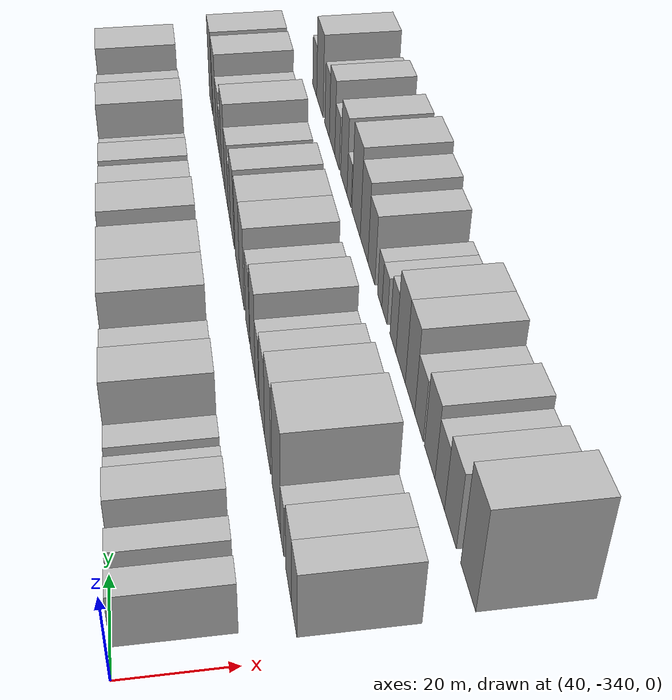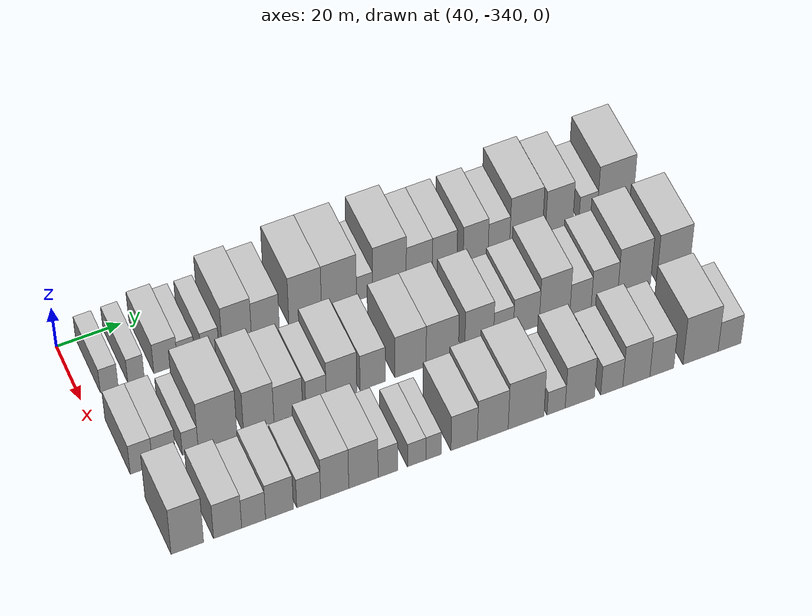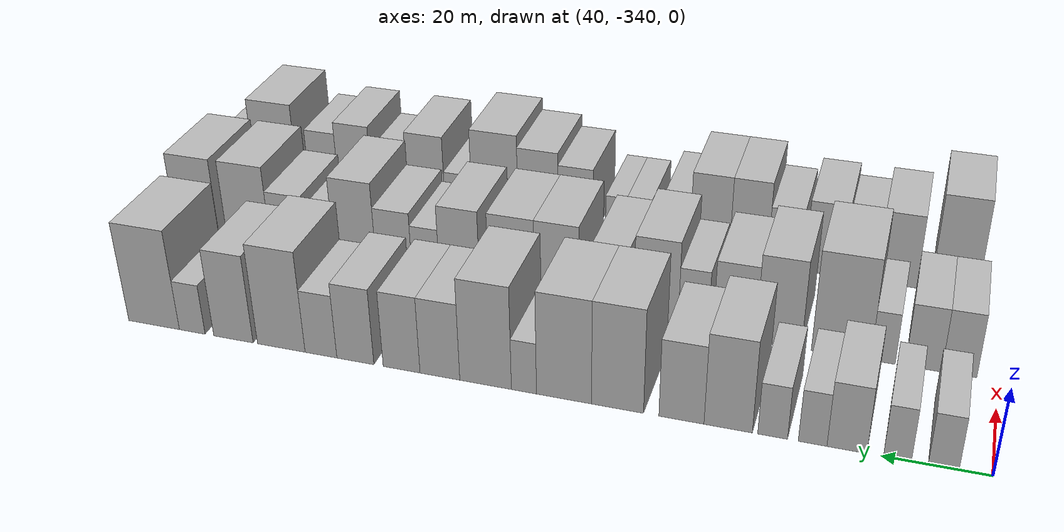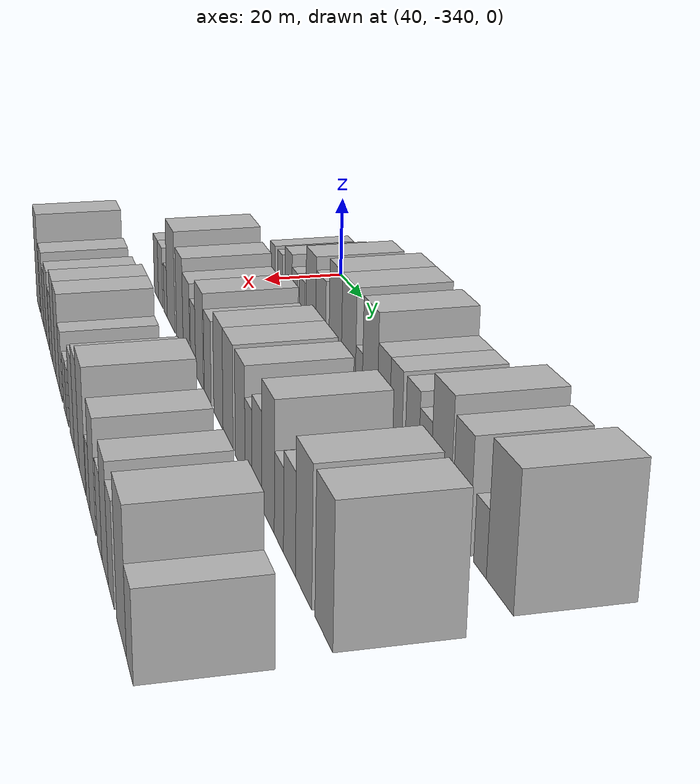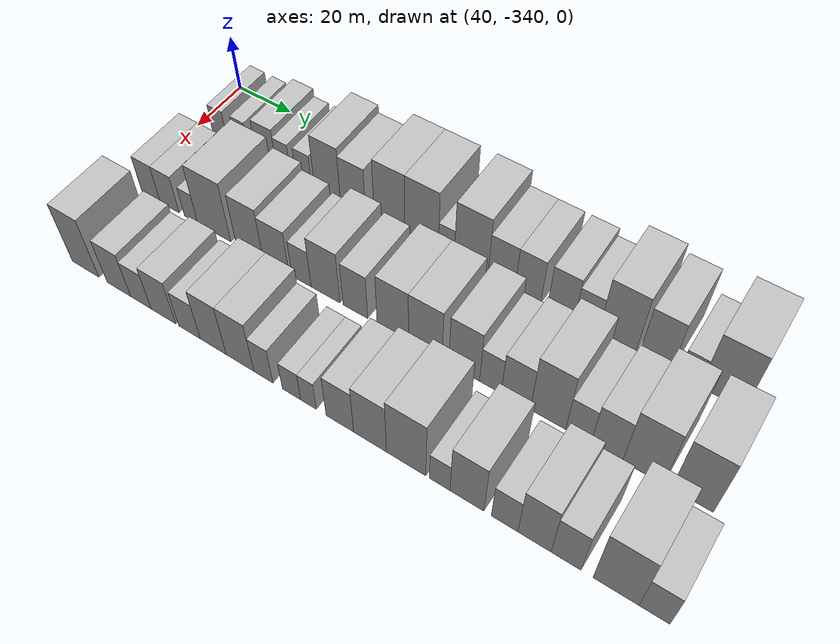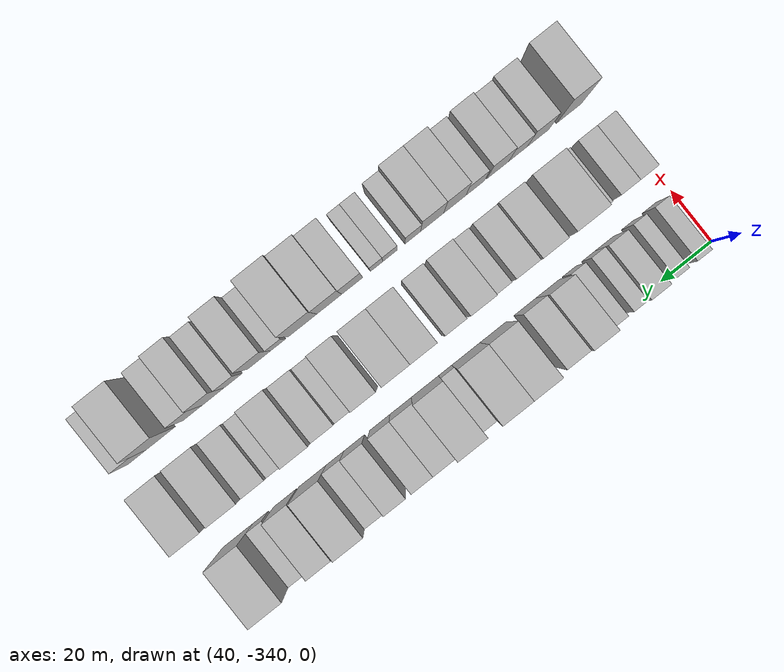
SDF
<sdf version="1.6">
 <world name="default">
  <model name="building_1">
   <static>1</static>
   <pose>50.0000 -331.2544 0 0.000000 0.000000 0.000000</pose>
   <link name="link">
    <pose>0 0 6.00 0 0 0</pose>
    <collision name="collision"><geometry><box><size>20.0000 5.4912 12.0000</size></box></geometry></collision>
    <visual name="visual">
     <cast_shadows>0</cast_shadows>
     <geometry><box><size>20.0000 5.4912 12.0000</size></box></geometry>
     <material>
      <script>
       <uri>model://HANNAS_wall/materials/scripts</uri>
       <uri>model://HANNAS_wall/materials/textures</uri>
       <name>vrc/HANNAS_wall</name>
      </script>
     </material>
    </visual>
   </link>
  </model>
  <model name="building_2">
   <static>1</static>
   <pose>50.0000 -322.9805 0 0.000000 0.000000 0.000000</pose>
   <link name="link">
    <pose>0 0 6.00 0 0 0</pose>
    <collision name="collision"><geometry><box><size>20.0000 5.0566 12.0000</size></box></geometry></collision>
    <visual name="visual">
     <cast_shadows>0</cast_shadows>
     <geometry><box><size>20.0000 5.0566 12.0000</size></box></geometry>
     <material>
      <script>
       <uri>model://HANNAS_wall/materials/scripts</uri>
       <uri>model://HANNAS_wall/materials/textures</uri>
       <name>vrc/HANNAS_wall</name>
      </script>
     </material>
    </visual>
   </link>
  </model>
  <model name="building_3">
   <static>1</static>
   <pose>50.0000 -313.7861 0 0.000000 0.000000 0.000000</pose>
   <link name="link">
    <pose>0 0 7.50 0 0 0</pose>
    <collision name="collision"><geometry><box><size>20.0000 7.3321 15.0000</size></box></geometry></collision>
    <visual name="visual">
     <cast_shadows>0</cast_shadows>
     <geometry><box><size>20.0000 7.3321 15.0000</size></box></geometry>
     <material>
      <script>
       <uri>model://HANNAS_wall/materials/scripts</uri>
       <uri>model://HANNAS_wall/materials/textures</uri>
       <name>vrc/HANNAS_wall</name>
      </script>
     </material>
    </visual>
   </link>
  </model>
  <model name="building_4">
   <static>1</static>
   <pose>50.0000 -307.4647 0 0.000000 0.000000 0.000000</pose>
   <link name="link">
    <pose>0 0 6.00 0 0 0</pose>
    <collision name="collision"><geometry><box><size>20.0000 5.3108 12.0000</size></box></geometry></collision>
    <visual name="visual">
     <cast_shadows>0</cast_shadows>
     <geometry><box><size>20.0000 5.3108 12.0000</size></box></geometry>
     <material>
      <script>
       <uri>model://HANNAS_wall/materials/scripts</uri>
       <uri>model://HANNAS_wall/materials/textures</uri>
       <name>vrc/HANNAS_wall</name>
      </script>
     </material>
    </visual>
   </link>
  </model>
  <model name="building_5">
   <static>1</static>
   <pose>50.0000 -300.0003 0 0.000000 0.000000 0.000000</pose>
   <link name="link">
    <pose>0 0 6.00 0 0 0</pose>
    <collision name="collision"><geometry><box><size>20.0000 5.6180 12.0000</size></box></geometry></collision>
    <visual name="visual">
     <cast_shadows>0</cast_shadows>
     <geometry><box><size>20.0000 5.6180 12.0000</size></box></geometry>
     <material>
      <script>
       <uri>model://HANNAS_wall/materials/scripts</uri>
       <uri>model://HANNAS_wall/materials/textures</uri>
       <name>vrc/HANNAS_wall</name>
      </script>
     </material>
    </visual>
   </link>
  </model>
  <model name="building_6">
   <static>1</static>
   <pose>50.0000 -291.5749 0 0.000000 0.000000 0.000000</pose>
   <link name="link">
    <pose>0 0 10.50 0 0 0</pose>
    <collision name="collision"><geometry><box><size>20.0000 9.2328 21.0000</size></box></geometry></collision>
    <visual name="visual">
     <cast_shadows>0</cast_shadows>
     <geometry><box><size>20.0000 9.2328 21.0000</size></box></geometry>
     <material>
      <script>
       <uri>model://HANNAS_wall/materials/scripts</uri>
       <uri>model://HANNAS_wall/materials/textures</uri>
       <name>vrc/HANNAS_wall</name>
      </script>
     </material>
    </visual>
   </link>
  </model>
  <model name="building_7">
   <static>1</static>
   <pose>50.0000 -282.5871 0 0.000000 0.000000 0.000000</pose>
   <link name="link">
    <pose>0 0 9.00 0 0 0</pose>
    <collision name="collision"><geometry><box><size>20.0000 8.7428 18.0000</size></box></geometry></collision>
    <visual name="visual">
     <cast_shadows>0</cast_shadows>
     <geometry><box><size>20.0000 8.7428 18.0000</size></box></geometry>
     <material>
      <script>
       <uri>model://HANNAS_wall/materials/scripts</uri>
       <uri>model://HANNAS_wall/materials/textures</uri>
       <name>vrc/HANNAS_wall</name>
      </script>
     </material>
    </visual>
   </link>
  </model>
  <model name="building_8">
   <static>1</static>
   <pose>50.0000 -270.0461 0 0.000000 0.000000 0.000000</pose>
   <link name="link">
    <pose>0 0 12.00 0 0 0</pose>
    <collision name="collision"><geometry><box><size>20.0000 10.3390 24.0000</size></box></geometry></collision>
    <visual name="visual">
     <cast_shadows>0</cast_shadows>
     <geometry><box><size>20.0000 10.3390 24.0000</size></box></geometry>
     <material>
      <script>
       <uri>model://HANNAS_wall/materials/scripts</uri>
       <uri>model://HANNAS_wall/materials/textures</uri>
       <name>vrc/HANNAS_wall</name>
      </script>
     </material>
    </visual>
   </link>
  </model>
  <model name="building_9">
   <static>1</static>
   <pose>50.0000 -259.3363 0 0.000000 0.000000 0.000000</pose>
   <link name="link">
    <pose>0 0 12.00 0 0 0</pose>
    <collision name="collision"><geometry><box><size>20.0000 11.0808 24.0000</size></box></geometry></collision>
    <visual name="visual">
     <cast_shadows>0</cast_shadows>
     <geometry><box><size>20.0000 11.0808 24.0000</size></box></geometry>
     <material>
      <script>
       <uri>model://HANNAS_wall/materials/scripts</uri>
       <uri>model://HANNAS_wall/materials/textures</uri>
       <name>vrc/HANNAS_wall</name>
      </script>
     </material>
    </visual>
   </link>
  </model>
  <model name="building_10">
   <static>1</static>
   <pose>50.0000 -251.2310 0 0.000000 0.000000 0.000000</pose>
   <link name="link">
    <pose>0 0 6.00 0 0 0</pose>
    <collision name="collision"><geometry><box><size>20.0000 5.1298 12.0000</size></box></geometry></collision>
    <visual name="visual">
     <cast_shadows>0</cast_shadows>
     <geometry><box><size>20.0000 5.1298 12.0000</size></box></geometry>
     <material>
      <script>
       <uri>model://HANNAS_wall/materials/scripts</uri>
       <uri>model://HANNAS_wall/materials/textures</uri>
       <name>vrc/HANNAS_wall</name>
      </script>
     </material>
    </visual>
   </link>
  </model>
  <model name="building_11">
   <static>1</static>
   <pose>50.0000 -243.3117 0 0.000000 0.000000 0.000000</pose>
   <link name="link">
    <pose>0 0 12.00 0 0 0</pose>
    <collision name="collision"><geometry><box><size>20.0000 10.7088 24.0000</size></box></geometry></collision>
    <visual name="visual">
     <cast_shadows>0</cast_shadows>
     <geometry><box><size>20.0000 10.7088 24.0000</size></box></geometry>
     <material>
      <script>
       <uri>model://HANNAS_wall/materials/scripts</uri>
       <uri>model://HANNAS_wall/materials/textures</uri>
       <name>vrc/HANNAS_wall</name>
      </script>
     </material>
    </visual>
   </link>
  </model>
  <model name="building_12">
   <static>1</static>
   <pose>50.0000 -233.7596 0 0.000000 0.000000 0.000000</pose>
   <link name="link">
    <pose>0 0 9.00 0 0 0</pose>
    <collision name="collision"><geometry><box><size>20.0000 8.3953 18.0000</size></box></geometry></collision>
    <visual name="visual">
     <cast_shadows>0</cast_shadows>
     <geometry><box><size>20.0000 8.3953 18.0000</size></box></geometry>
     <material>
      <script>
       <uri>model://HANNAS_wall/materials/scripts</uri>
       <uri>model://HANNAS_wall/materials/textures</uri>
       <name>vrc/HANNAS_wall</name>
      </script>
     </material>
    </visual>
   </link>
  </model>
  <model name="building_13">
   <static>1</static>
   <pose>50.0000 -225.6236 0 0.000000 0.000000 0.000000</pose>
   <link name="link">
    <pose>0 0 9.00 0 0 0</pose>
    <collision name="collision"><geometry><box><size>20.0000 7.8767 18.0000</size></box></geometry></collision>
    <visual name="visual">
     <cast_shadows>0</cast_shadows>
     <geometry><box><size>20.0000 7.8767 18.0000</size></box></geometry>
     <material>
      <script>
       <uri>model://HANNAS_wall/materials/scripts</uri>
       <uri>model://HANNAS_wall/materials/textures</uri>
       <name>vrc/HANNAS_wall</name>
      </script>
     </material>
    </visual>
   </link>
  </model>
  <model name="building_14">
   <static>1</static>
   <pose>50.0000 -215.6583 0 0.000000 0.000000 0.000000</pose>
   <link name="link">
    <pose>0 0 9.00 0 0 0</pose>
    <collision name="collision"><geometry><box><size>20.0000 8.0539 18.0000</size></box></geometry></collision>
    <visual name="visual">
     <cast_shadows>0</cast_shadows>
     <geometry><box><size>20.0000 8.0539 18.0000</size></box></geometry>
     <material>
      <script>
       <uri>model://HANNAS_wall/materials/scripts</uri>
       <uri>model://HANNAS_wall/materials/textures</uri>
       <name>vrc/HANNAS_wall</name>
      </script>
     </material>
    </visual>
   </link>
  </model>
  <model name="building_15">
   <static>1</static>
   <pose>50.0000 -208.1335 0 0.000000 0.000000 0.000000</pose>
   <link name="link">
    <pose>0 0 7.50 0 0 0</pose>
    <collision name="collision"><geometry><box><size>20.0000 6.9958 15.0000</size></box></geometry></collision>
    <visual name="visual">
     <cast_shadows>0</cast_shadows>
     <geometry><box><size>20.0000 6.9958 15.0000</size></box></geometry>
     <material>
      <script>
       <uri>model://HANNAS_wall/materials/scripts</uri>
       <uri>model://HANNAS_wall/materials/textures</uri>
       <name>vrc/HANNAS_wall</name>
      </script>
     </material>
    </visual>
   </link>
  </model>
  <model name="building_16">
   <static>1</static>
   <pose>50.0000 -199.3201 0 0.000000 0.000000 0.000000</pose>
   <link name="link">
    <pose>0 0 12.00 0 0 0</pose>
    <collision name="collision"><geometry><box><size>20.0000 10.6309 24.0000</size></box></geometry></collision>
    <visual name="visual">
     <cast_shadows>0</cast_shadows>
     <geometry><box><size>20.0000 10.6309 24.0000</size></box></geometry>
     <material>
      <script>
       <uri>model://HANNAS_wall/materials/scripts</uri>
       <uri>model://HANNAS_wall/materials/textures</uri>
       <name>vrc/HANNAS_wall</name>
      </script>
     </material>
    </visual>
   </link>
  </model>
  <model name="building_17">
   <static>1</static>
   <pose>50.0000 -188.5351 0 0.000000 0.000000 0.000000</pose>
   <link name="link">
    <pose>0 0 10.50 0 0 0</pose>
    <collision name="collision"><geometry><box><size>20.0000 8.9390 21.0000</size></box></geometry></collision>
    <visual name="visual">
     <cast_shadows>0</cast_shadows>
     <geometry><box><size>20.0000 8.9390 21.0000</size></box></geometry>
     <material>
      <script>
       <uri>model://HANNAS_wall/materials/scripts</uri>
       <uri>model://HANNAS_wall/materials/textures</uri>
       <name>vrc/HANNAS_wall</name>
      </script>
     </material>
    </visual>
   </link>
  </model>
  <model name="building_18">
   <static>1</static>
   <pose>50.0000 -179.0991 0 0.000000 0.000000 0.000000</pose>
   <link name="link">
    <pose>0 0 6.00 0 0 0</pose>
    <collision name="collision"><geometry><box><size>20.0000 5.9330 12.0000</size></box></geometry></collision>
    <visual name="visual">
     <cast_shadows>0</cast_shadows>
     <geometry><box><size>20.0000 5.9330 12.0000</size></box></geometry>
     <material>
      <script>
       <uri>model://HANNAS_wall/materials/scripts</uri>
       <uri>model://HANNAS_wall/materials/textures</uri>
       <name>vrc/HANNAS_wall</name>
      </script>
     </material>
    </visual>
   </link>
  </model>
  <model name="building_19">
   <static>1</static>
   <pose>50.0000 -170.2115 0 0.000000 0.000000 0.000000</pose>
   <link name="link">
    <pose>0 0 12.00 0 0 0</pose>
    <collision name="collision"><geometry><box><size>20.0000 11.8422 24.0000</size></box></geometry></collision>
    <visual name="visual">
     <cast_shadows>0</cast_shadows>
     <geometry><box><size>20.0000 11.8422 24.0000</size></box></geometry>
     <material>
      <script>
       <uri>model://HANNAS_wall/materials/scripts</uri>
       <uri>model://HANNAS_wall/materials/textures</uri>
       <name>vrc/HANNAS_wall</name>
      </script>
     </material>
    </visual>
   </link>
  </model>
  <model name="building_78">
   <static>1</static>
   <pose>79.0000 -332.5974 0 0.000000 0.000000 0.000000</pose>
   <link name="link">
    <pose>0 0 7.50 0 0 0</pose>
    <collision name="collision"><geometry><box><size>20.0000 6.8053 15.0000</size></box></geometry></collision>
    <visual name="visual">
     <cast_shadows>0</cast_shadows>
     <geometry><box><size>20.0000 6.8053 15.0000</size></box></geometry>
     <material>
      <script>
       <uri>model://HANNAS_wall/materials/scripts</uri>
       <uri>model://HANNAS_wall/materials/textures</uri>
       <name>vrc/HANNAS_wall</name>
      </script>
     </material>
    </visual>
   </link>
  </model>
  <model name="building_79">
   <static>1</static>
   <pose>79.0000 -325.6412 0 0.000000 0.000000 0.000000</pose>
   <link name="link">
    <pose>0 0 7.50 0 0 0</pose>
    <collision name="collision"><geometry><box><size>20.0000 7.1070 15.0000</size></box></geometry></collision>
    <visual name="visual">
     <cast_shadows>0</cast_shadows>
     <geometry><box><size>20.0000 7.1070 15.0000</size></box></geometry>
     <material>
      <script>
       <uri>model://HANNAS_wall/materials/scripts</uri>
       <uri>model://HANNAS_wall/materials/textures</uri>
       <name>vrc/HANNAS_wall</name>
      </script>
     </material>
    </visual>
   </link>
  </model>
  <model name="building_80">
   <static>1</static>
   <pose>79.0000 -317.6626 0 0.000000 0.000000 0.000000</pose>
   <link name="link">
    <pose>0 0 6.00 0 0 0</pose>
    <collision name="collision"><geometry><box><size>20.0000 4.8501 12.0000</size></box></geometry></collision>
    <visual name="visual">
     <cast_shadows>0</cast_shadows>
     <geometry><box><size>20.0000 4.8501 12.0000</size></box></geometry>
     <material>
      <script>
       <uri>model://HANNAS_wall/materials/scripts</uri>
       <uri>model://HANNAS_wall/materials/textures</uri>
       <name>vrc/HANNAS_wall</name>
      </script>
     </material>
    </visual>
   </link>
  </model>
  <model name="building_81">
   <static>1</static>
   <pose>79.0000 -309.2641 0 0.000000 0.000000 0.000000</pose>
   <link name="link">
    <pose>0 0 12.00 0 0 0</pose>
    <collision name="collision"><geometry><box><size>20.0000 11.9469 24.0000</size></box></geometry></collision>
    <visual name="visual">
     <cast_shadows>0</cast_shadows>
     <geometry><box><size>20.0000 11.9469 24.0000</size></box></geometry>
     <material>
      <script>
       <uri>model://HANNAS_wall/materials/scripts</uri>
       <uri>model://HANNAS_wall/materials/textures</uri>
       <name>vrc/HANNAS_wall</name>
      </script>
     </material>
    </visual>
   </link>
  </model>
  <model name="building_82">
   <static>1</static>
   <pose>79.0000 -296.5862 0 0.000000 0.000000 0.000000</pose>
   <link name="link">
    <pose>0 0 10.50 0 0 0</pose>
    <collision name="collision"><geometry><box><size>20.0000 9.4090 21.0000</size></box></geometry></collision>
    <visual name="visual">
     <cast_shadows>0</cast_shadows>
     <geometry><box><size>20.0000 9.4090 21.0000</size></box></geometry>
     <material>
      <script>
       <uri>model://HANNAS_wall/materials/scripts</uri>
       <uri>model://HANNAS_wall/materials/textures</uri>
       <name>vrc/HANNAS_wall</name>
      </script>
     </material>
    </visual>
   </link>
  </model>
  <model name="building_83">
   <static>1</static>
   <pose>79.0000 -287.4220 0 0.000000 0.000000 0.000000</pose>
   <link name="link">
    <pose>0 0 9.00 0 0 0</pose>
    <collision name="collision"><geometry><box><size>20.0000 8.9193 18.0000</size></box></geometry></collision>
    <visual name="visual">
     <cast_shadows>0</cast_shadows>
     <geometry><box><size>20.0000 8.9193 18.0000</size></box></geometry>
     <material>
      <script>
       <uri>model://HANNAS_wall/materials/scripts</uri>
       <uri>model://HANNAS_wall/materials/textures</uri>
       <name>vrc/HANNAS_wall</name>
      </script>
     </material>
    </visual>
   </link>
  </model>
  <model name="building_84">
   <static>1</static>
   <pose>79.0000 -278.7670 0 0.000000 0.000000 0.000000</pose>
   <link name="link">
    <pose>0 0 7.50 0 0 0</pose>
    <collision name="collision"><geometry><box><size>20.0000 6.3907 15.0000</size></box></geometry></collision>
    <visual name="visual">
     <cast_shadows>0</cast_shadows>
     <geometry><box><size>20.0000 6.3907 15.0000</size></box></geometry>
     <material>
      <script>
       <uri>model://HANNAS_wall/materials/scripts</uri>
       <uri>model://HANNAS_wall/materials/textures</uri>
       <name>vrc/HANNAS_wall</name>
      </script>
     </material>
    </visual>
   </link>
  </model>
  <model name="building_85">
   <static>1</static>
   <pose>79.0000 -270.8184 0 0.000000 0.000000 0.000000</pose>
   <link name="link">
    <pose>0 0 10.50 0 0 0</pose>
    <collision name="collision"><geometry><box><size>20.0000 9.5065 21.0000</size></box></geometry></collision>
    <visual name="visual">
     <cast_shadows>0</cast_shadows>
     <geometry><box><size>20.0000 9.5065 21.0000</size></box></geometry>
     <material>
      <script>
       <uri>model://HANNAS_wall/materials/scripts</uri>
       <uri>model://HANNAS_wall/materials/textures</uri>
       <name>vrc/HANNAS_wall</name>
      </script>
     </material>
    </visual>
   </link>
  </model>
  <model name="building_86">
   <static>1</static>
   <pose>79.0000 -261.0963 0 0.000000 0.000000 0.000000</pose>
   <link name="link">
    <pose>0 0 9.00 0 0 0</pose>
    <collision name="collision"><geometry><box><size>20.0000 7.9378 18.0000</size></box></geometry></collision>
    <visual name="visual">
     <cast_shadows>0</cast_shadows>
     <geometry><box><size>20.0000 7.9378 18.0000</size></box></geometry>
     <material>
      <script>
       <uri>model://HANNAS_wall/materials/scripts</uri>
       <uri>model://HANNAS_wall/materials/textures</uri>
       <name>vrc/HANNAS_wall</name>
      </script>
     </material>
    </visual>
   </link>
  </model>
  <model name="building_87">
   <static>1</static>
   <pose>79.0000 -249.2209 0 0.000000 0.000000 0.000000</pose>
   <link name="link">
    <pose>0 0 10.50 0 0 0</pose>
    <collision name="collision"><geometry><box><size>20.0000 9.8129 21.0000</size></box></geometry></collision>
    <visual name="visual">
     <cast_shadows>0</cast_shadows>
     <geometry><box><size>20.0000 9.8129 21.0000</size></box></geometry>
     <material>
      <script>
       <uri>model://HANNAS_wall/materials/scripts</uri>
       <uri>model://HANNAS_wall/materials/textures</uri>
       <name>vrc/HANNAS_wall</name>
      </script>
     </material>
    </visual>
   </link>
  </model>
  <model name="building_88">
   <static>1</static>
   <pose>79.0000 -239.1981 0 0.000000 0.000000 0.000000</pose>
   <link name="link">
    <pose>0 0 10.50 0 0 0</pose>
    <collision name="collision"><geometry><box><size>20.0000 10.2328 21.0000</size></box></geometry></collision>
    <visual name="visual">
     <cast_shadows>0</cast_shadows>
     <geometry><box><size>20.0000 10.2328 21.0000</size></box></geometry>
     <material>
      <script>
       <uri>model://HANNAS_wall/materials/scripts</uri>
       <uri>model://HANNAS_wall/materials/textures</uri>
       <name>vrc/HANNAS_wall</name>
      </script>
     </material>
    </visual>
   </link>
  </model>
  <model name="building_89">
   <static>1</static>
   <pose>79.0000 -227.5071 0 0.000000 0.000000 0.000000</pose>
   <link name="link">
    <pose>0 0 10.50 0 0 0</pose>
    <collision name="collision"><geometry><box><size>20.0000 9.1492 21.0000</size></box></geometry></collision>
    <visual name="visual">
     <cast_shadows>0</cast_shadows>
     <geometry><box><size>20.0000 9.1492 21.0000</size></box></geometry>
     <material>
      <script>
       <uri>model://HANNAS_wall/materials/scripts</uri>
       <uri>model://HANNAS_wall/materials/textures</uri>
       <name>vrc/HANNAS_wall</name>
      </script>
     </material>
    </visual>
   </link>
  </model>
  <model name="building_90">
   <static>1</static>
   <pose>79.0000 -219.7822 0 0.000000 0.000000 0.000000</pose>
   <link name="link">
    <pose>0 0 7.50 0 0 0</pose>
    <collision name="collision"><geometry><box><size>20.0000 6.3004 15.0000</size></box></geometry></collision>
    <visual name="visual">
     <cast_shadows>0</cast_shadows>
     <geometry><box><size>20.0000 6.3004 15.0000</size></box></geometry>
     <material>
      <script>
       <uri>model://HANNAS_wall/materials/scripts</uri>
       <uri>model://HANNAS_wall/materials/textures</uri>
       <name>vrc/HANNAS_wall</name>
      </script>
     </material>
    </visual>
   </link>
  </model>
  <model name="building_91">
   <static>1</static>
   <pose>79.0000 -212.4733 0 0.000000 0.000000 0.000000</pose>
   <link name="link">
    <pose>0 0 9.00 0 0 0</pose>
    <collision name="collision"><geometry><box><size>20.0000 8.3175 18.0000</size></box></geometry></collision>
    <visual name="visual">
     <cast_shadows>0</cast_shadows>
     <geometry><box><size>20.0000 8.3175 18.0000</size></box></geometry>
     <material>
      <script>
       <uri>model://HANNAS_wall/materials/scripts</uri>
       <uri>model://HANNAS_wall/materials/textures</uri>
       <name>vrc/HANNAS_wall</name>
      </script>
     </material>
    </visual>
   </link>
  </model>
  <model name="building_92">
   <static>1</static>
   <pose>79.0000 -203.3962 0 0.000000 0.000000 0.000000</pose>
   <link name="link">
    <pose>0 0 12.00 0 0 0</pose>
    <collision name="collision"><geometry><box><size>20.0000 9.8367 24.0000</size></box></geometry></collision>
    <visual name="visual">
     <cast_shadows>0</cast_shadows>
     <geometry><box><size>20.0000 9.8367 24.0000</size></box></geometry>
     <material>
      <script>
       <uri>model://HANNAS_wall/materials/scripts</uri>
       <uri>model://HANNAS_wall/materials/textures</uri>
       <name>vrc/HANNAS_wall</name>
      </script>
     </material>
    </visual>
   </link>
  </model>
  <model name="building_93">
   <static>1</static>
   <pose>79.0000 -195.0236 0 0.000000 0.000000 0.000000</pose>
   <link name="link">
    <pose>0 0 7.50 0 0 0</pose>
    <collision name="collision"><geometry><box><size>20.0000 6.9086 15.0000</size></box></geometry></collision>
    <visual name="visual">
     <cast_shadows>0</cast_shadows>
     <geometry><box><size>20.0000 6.9086 15.0000</size></box></geometry>
     <material>
      <script>
       <uri>model://HANNAS_wall/materials/scripts</uri>
       <uri>model://HANNAS_wall/materials/textures</uri>
       <name>vrc/HANNAS_wall</name>
      </script>
     </material>
    </visual>
   </link>
  </model>
  <model name="building_94">
   <static>1</static>
   <pose>79.0000 -187.3322 0 0.000000 0.000000 0.000000</pose>
   <link name="link">
    <pose>0 0 9.00 0 0 0</pose>
    <collision name="collision"><geometry><box><size>20.0000 8.4741 18.0000</size></box></geometry></collision>
    <visual name="visual">
     <cast_shadows>0</cast_shadows>
     <geometry><box><size>20.0000 8.4741 18.0000</size></box></geometry>
     <material>
      <script>
       <uri>model://HANNAS_wall/materials/scripts</uri>
       <uri>model://HANNAS_wall/materials/textures</uri>
       <name>vrc/HANNAS_wall</name>
      </script>
     </material>
    </visual>
   </link>
  </model>
  <model name="building_95">
   <static>1</static>
   <pose>79.0000 -177.7716 0 0.000000 0.000000 0.000000</pose>
   <link name="link">
    <pose>0 0 12.00 0 0 0</pose>
    <collision name="collision"><geometry><box><size>20.0000 10.6472 24.0000</size></box></geometry></collision>
    <visual name="visual">
     <cast_shadows>0</cast_shadows>
     <geometry><box><size>20.0000 10.6472 24.0000</size></box></geometry>
     <material>
      <script>
       <uri>model://HANNAS_wall/materials/scripts</uri>
       <uri>model://HANNAS_wall/materials/textures</uri>
       <name>vrc/HANNAS_wall</name>
      </script>
     </material>
    </visual>
   </link>
  </model>
  <model name="building_96">
   <static>1</static>
   <pose>79.0000 -165.1127 0 0.000000 0.000000 0.000000</pose>
   <link name="link">
    <pose>0 0 12.00 0 0 0</pose>
    <collision name="collision"><geometry><box><size>20.0000 10.6705 24.0000</size></box></geometry></collision>
    <visual name="visual">
     <cast_shadows>0</cast_shadows>
     <geometry><box><size>20.0000 10.6705 24.0000</size></box></geometry>
     <material>
      <script>
       <uri>model://HANNAS_wall/materials/scripts</uri>
       <uri>model://HANNAS_wall/materials/textures</uri>
       <name>vrc/HANNAS_wall</name>
      </script>
     </material>
    </visual>
   </link>
  </model>
  <model name="building_154">
   <static>1</static>
   <pose>108.0000 -330.0926 0 0.000000 0.000000 0.000000</pose>
   <link name="link">
    <pose>0 0 12.00 0 0 0</pose>
    <collision name="collision"><geometry><box><size>20.0000 9.8147 24.0000</size></box></geometry></collision>
    <visual name="visual">
     <cast_shadows>0</cast_shadows>
     <geometry><box><size>20.0000 9.8147 24.0000</size></box></geometry>
     <material>
      <script>
       <uri>model://HANNAS_wall/materials/scripts</uri>
       <uri>model://HANNAS_wall/materials/textures</uri>
       <name>vrc/HANNAS_wall</name>
      </script>
     </material>
    </visual>
   </link>
  </model>
  <model name="building_155">
   <static>1</static>
   <pose>108.0000 -317.9172 0 0.000000 0.000000 0.000000</pose>
   <link name="link">
    <pose>0 0 9.00 0 0 0</pose>
    <collision name="collision"><geometry><box><size>20.0000 8.5362 18.0000</size></box></geometry></collision>
    <visual name="visual">
     <cast_shadows>0</cast_shadows>
     <geometry><box><size>20.0000 8.5362 18.0000</size></box></geometry>
     <material>
      <script>
       <uri>model://HANNAS_wall/materials/scripts</uri>
       <uri>model://HANNAS_wall/materials/textures</uri>
       <name>vrc/HANNAS_wall</name>
      </script>
     </material>
    </visual>
   </link>
  </model>
  <model name="building_156">
   <static>1</static>
   <pose>108.0000 -310.0138 0 0.000000 0.000000 0.000000</pose>
   <link name="link">
    <pose>0 0 7.50 0 0 0</pose>
    <collision name="collision"><geometry><box><size>20.0000 7.2705 15.0000</size></box></geometry></collision>
    <visual name="visual">
     <cast_shadows>0</cast_shadows>
     <geometry><box><size>20.0000 7.2705 15.0000</size></box></geometry>
     <material>
      <script>
       <uri>model://HANNAS_wall/materials/scripts</uri>
       <uri>model://HANNAS_wall/materials/textures</uri>
       <name>vrc/HANNAS_wall</name>
      </script>
     </material>
    </visual>
   </link>
  </model>
  <model name="building_157">
   <static>1</static>
   <pose>108.0000 -302.1228 0 0.000000 0.000000 0.000000</pose>
   <link name="link">
    <pose>0 0 9.00 0 0 0</pose>
    <collision name="collision"><geometry><box><size>20.0000 8.5115 18.0000</size></box></geometry></collision>
    <visual name="visual">
     <cast_shadows>0</cast_shadows>
     <geometry><box><size>20.0000 8.5115 18.0000</size></box></geometry>
     <material>
      <script>
       <uri>model://HANNAS_wall/materials/scripts</uri>
       <uri>model://HANNAS_wall/materials/textures</uri>
       <name>vrc/HANNAS_wall</name>
      </script>
     </material>
    </visual>
   </link>
  </model>
  <model name="building_158">
   <static>1</static>
   <pose>108.0000 -293.2004 0 0.000000 0.000000 0.000000</pose>
   <link name="link">
    <pose>0 0 7.50 0 0 0</pose>
    <collision name="collision"><geometry><box><size>20.0000 7.3332 15.0000</size></box></geometry></collision>
    <visual name="visual">
     <cast_shadows>0</cast_shadows>
     <geometry><box><size>20.0000 7.3332 15.0000</size></box></geometry>
     <material>
      <script>
       <uri>model://HANNAS_wall/materials/scripts</uri>
       <uri>model://HANNAS_wall/materials/textures</uri>
       <name>vrc/HANNAS_wall</name>
      </script>
     </material>
    </visual>
   </link>
  </model>
  <model name="building_159">
   <static>1</static>
   <pose>108.0000 -285.2214 0 0.000000 0.000000 0.000000</pose>
   <link name="link">
    <pose>0 0 10.50 0 0 0</pose>
    <collision name="collision"><geometry><box><size>20.0000 8.6247 21.0000</size></box></geometry></collision>
    <visual name="visual">
     <cast_shadows>0</cast_shadows>
     <geometry><box><size>20.0000 8.6247 21.0000</size></box></geometry>
     <material>
      <script>
       <uri>model://HANNAS_wall/materials/scripts</uri>
       <uri>model://HANNAS_wall/materials/textures</uri>
       <name>vrc/HANNAS_wall</name>
      </script>
     </material>
    </visual>
   </link>
  </model>
  <model name="building_160">
   <static>1</static>
   <pose>108.0000 -276.3865 0 0.000000 0.000000 0.000000</pose>
   <link name="link">
    <pose>0 0 10.50 0 0 0</pose>
    <collision name="collision"><geometry><box><size>20.0000 9.0451 21.0000</size></box></geometry></collision>
    <visual name="visual">
     <cast_shadows>0</cast_shadows>
     <geometry><box><size>20.0000 9.0451 21.0000</size></box></geometry>
     <material>
      <script>
       <uri>model://HANNAS_wall/materials/scripts</uri>
       <uri>model://HANNAS_wall/materials/textures</uri>
       <name>vrc/HANNAS_wall</name>
      </script>
     </material>
    </visual>
   </link>
  </model>
  <model name="building_161">
   <static>1</static>
   <pose>108.0000 -268.8211 0 0.000000 0.000000 0.000000</pose>
   <link name="link">
    <pose>0 0 7.50 0 0 0</pose>
    <collision name="collision"><geometry><box><size>20.0000 6.0858 15.0000</size></box></geometry></collision>
    <visual name="visual">
     <cast_shadows>0</cast_shadows>
     <geometry><box><size>20.0000 6.0858 15.0000</size></box></geometry>
     <material>
      <script>
       <uri>model://HANNAS_wall/materials/scripts</uri>
       <uri>model://HANNAS_wall/materials/textures</uri>
       <name>vrc/HANNAS_wall</name>
      </script>
     </material>
    </visual>
   </link>
  </model>
  <model name="building_162">
   <static>1</static>
   <pose>108.0000 -259.9303 0 0.000000 0.000000 0.000000</pose>
   <link name="link">
    <pose>0 0 6.00 0 0 0</pose>
    <collision name="collision"><geometry><box><size>20.0000 5.6959 12.0000</size></box></geometry></collision>
    <visual name="visual">
     <cast_shadows>0</cast_shadows>
     <geometry><box><size>20.0000 5.6959 12.0000</size></box></geometry>
     <material>
      <script>
       <uri>model://HANNAS_wall/materials/scripts</uri>
       <uri>model://HANNAS_wall/materials/textures</uri>
       <name>vrc/HANNAS_wall</name>
      </script>
     </material>
    </visual>
   </link>
  </model>
  <model name="building_163">
   <static>1</static>
   <pose>108.0000 -254.6708 0 0.000000 0.000000 0.000000</pose>
   <link name="link">
    <pose>0 0 6.00 0 0 0</pose>
    <collision name="collision"><geometry><box><size>20.0000 4.8230 12.0000</size></box></geometry></collision>
    <visual name="visual">
     <cast_shadows>0</cast_shadows>
     <geometry><box><size>20.0000 4.8230 12.0000</size></box></geometry>
     <material>
      <script>
       <uri>model://HANNAS_wall/materials/scripts</uri>
       <uri>model://HANNAS_wall/materials/textures</uri>
       <name>vrc/HANNAS_wall</name>
      </script>
     </material>
    </visual>
   </link>
  </model>
  <model name="building_164">
   <static>1</static>
   <pose>108.0000 -245.1375 0 0.000000 0.000000 0.000000</pose>
   <link name="link">
    <pose>0 0 9.00 0 0 0</pose>
    <collision name="collision"><geometry><box><size>20.0000 8.2436 18.0000</size></box></geometry></collision>
    <visual name="visual">
     <cast_shadows>0</cast_shadows>
     <geometry><box><size>20.0000 8.2436 18.0000</size></box></geometry>
     <material>
      <script>
       <uri>model://HANNAS_wall/materials/scripts</uri>
       <uri>model://HANNAS_wall/materials/textures</uri>
       <name>vrc/HANNAS_wall</name>
      </script>
     </material>
    </visual>
   </link>
  </model>
  <model name="building_165">
   <static>1</static>
   <pose>108.0000 -236.1880 0 0.000000 0.000000 0.000000</pose>
   <link name="link">
    <pose>0 0 10.50 0 0 0</pose>
    <collision name="collision"><geometry><box><size>20.0000 9.6556 21.0000</size></box></geometry></collision>
    <visual name="visual">
     <cast_shadows>0</cast_shadows>
     <geometry><box><size>20.0000 9.6556 21.0000</size></box></geometry>
     <material>
      <script>
       <uri>model://HANNAS_wall/materials/scripts</uri>
       <uri>model://HANNAS_wall/materials/textures</uri>
       <name>vrc/HANNAS_wall</name>
      </script>
     </material>
    </visual>
   </link>
  </model>
  <model name="building_166">
   <static>1</static>
   <pose>108.0000 -225.7359 0 0.000000 0.000000 0.000000</pose>
   <link name="link">
    <pose>0 0 12.00 0 0 0</pose>
    <collision name="collision"><geometry><box><size>20.0000 11.2486 24.0000</size></box></geometry></collision>
    <visual name="visual">
     <cast_shadows>0</cast_shadows>
     <geometry><box><size>20.0000 11.2486 24.0000</size></box></geometry>
     <material>
      <script>
       <uri>model://HANNAS_wall/materials/scripts</uri>
       <uri>model://HANNAS_wall/materials/textures</uri>
       <name>vrc/HANNAS_wall</name>
      </script>
     </material>
    </visual>
   </link>
  </model>
  <model name="building_167">
   <static>1</static>
   <pose>108.0000 -216.2547 0 0.000000 0.000000 0.000000</pose>
   <link name="link">
    <pose>0 0 6.00 0 0 0</pose>
    <collision name="collision"><geometry><box><size>20.0000 5.7137 12.0000</size></box></geometry></collision>
    <visual name="visual">
     <cast_shadows>0</cast_shadows>
     <geometry><box><size>20.0000 5.7137 12.0000</size></box></geometry>
     <material>
      <script>
       <uri>model://HANNAS_wall/materials/scripts</uri>
       <uri>model://HANNAS_wall/materials/textures</uri>
       <name>vrc/HANNAS_wall</name>
      </script>
     </material>
    </visual>
   </link>
  </model>
  <model name="building_168">
   <static>1</static>
   <pose>108.0000 -208.7574 0 0.000000 0.000000 0.000000</pose>
   <link name="link">
    <pose>0 0 10.50 0 0 0</pose>
    <collision name="collision"><geometry><box><size>20.0000 9.2808 21.0000</size></box></geometry></collision>
    <visual name="visual">
     <cast_shadows>0</cast_shadows>
     <geometry><box><size>20.0000 9.2808 21.0000</size></box></geometry>
     <material>
      <script>
       <uri>model://HANNAS_wall/materials/scripts</uri>
       <uri>model://HANNAS_wall/materials/textures</uri>
       <name>vrc/HANNAS_wall</name>
      </script>
     </material>
    </visual>
   </link>
  </model>
  <model name="building_169">
   <static>1</static>
   <pose>108.0000 -198.6068 0 0.000000 0.000000 0.000000</pose>
   <link name="link">
    <pose>0 0 7.50 0 0 0</pose>
    <collision name="collision"><geometry><box><size>20.0000 7.0204 15.0000</size></box></geometry></collision>
    <visual name="visual">
     <cast_shadows>0</cast_shadows>
     <geometry><box><size>20.0000 7.0204 15.0000</size></box></geometry>
     <material>
      <script>
       <uri>model://HANNAS_wall/materials/scripts</uri>
       <uri>model://HANNAS_wall/materials/textures</uri>
       <name>vrc/HANNAS_wall</name>
      </script>
     </material>
    </visual>
   </link>
  </model>
  <model name="building_170">
   <static>1</static>
   <pose>108.0000 -190.7739 0 0.000000 0.000000 0.000000</pose>
   <link name="link">
    <pose>0 0 10.50 0 0 0</pose>
    <collision name="collision"><geometry><box><size>20.0000 8.6454 21.0000</size></box></geometry></collision>
    <visual name="visual">
     <cast_shadows>0</cast_shadows>
     <geometry><box><size>20.0000 8.6454 21.0000</size></box></geometry>
     <material>
      <script>
       <uri>model://HANNAS_wall/materials/scripts</uri>
       <uri>model://HANNAS_wall/materials/textures</uri>
       <name>vrc/HANNAS_wall</name>
      </script>
     </material>
    </visual>
   </link>
  </model>
  <model name="building_171">
   <static>1</static>
   <pose>108.0000 -182.6399 0 0.000000 0.000000 0.000000</pose>
   <link name="link">
    <pose>0 0 9.00 0 0 0</pose>
    <collision name="collision"><geometry><box><size>20.0000 7.6225 18.0000</size></box></geometry></collision>
    <visual name="visual">
     <cast_shadows>0</cast_shadows>
     <geometry><box><size>20.0000 7.6225 18.0000</size></box></geometry>
     <material>
      <script>
       <uri>model://HANNAS_wall/materials/scripts</uri>
       <uri>model://HANNAS_wall/materials/textures</uri>
       <name>vrc/HANNAS_wall</name>
      </script>
     </material>
    </visual>
   </link>
  </model>
  <model name="building_172">
   <static>1</static>
   <pose>108.0000 -170.1797 0 0.000000 0.000000 0.000000</pose>
   <link name="link">
    <pose>0 0 12.00 0 0 0</pose>
    <collision name="collision"><geometry><box><size>20.0000 11.2980 24.0000</size></box></geometry></collision>
    <visual name="visual">
     <cast_shadows>0</cast_shadows>
     <geometry><box><size>20.0000 11.2980 24.0000</size></box></geometry>
     <material>
      <script>
       <uri>model://HANNAS_wall/materials/scripts</uri>
       <uri>model://HANNAS_wall/materials/textures</uri>
       <name>vrc/HANNAS_wall</name>
      </script>
     </material>
    </visual>
   </link>
  </model>
  <model name="building_173">
   <static>1</static>
   <pose>108.0000 -160.8482 0 0.000000 0.000000 0.000000</pose>
   <link name="link">
    <pose>0 0 7.50 0 0 0</pose>
    <collision name="collision"><geometry><box><size>20.0000 7.3651 15.0000</size></box></geometry></collision>
    <visual name="visual">
     <cast_shadows>0</cast_shadows>
     <geometry><box><size>20.0000 7.3651 15.0000</size></box></geometry>
     <material>
      <script>
       <uri>model://HANNAS_wall/materials/scripts</uri>
       <uri>model://HANNAS_wall/materials/textures</uri>
       <name>vrc/HANNAS_wall</name>
      </script>
     </material>
    </visual>
   </link>
  </model>
 </world>
</sdf>
